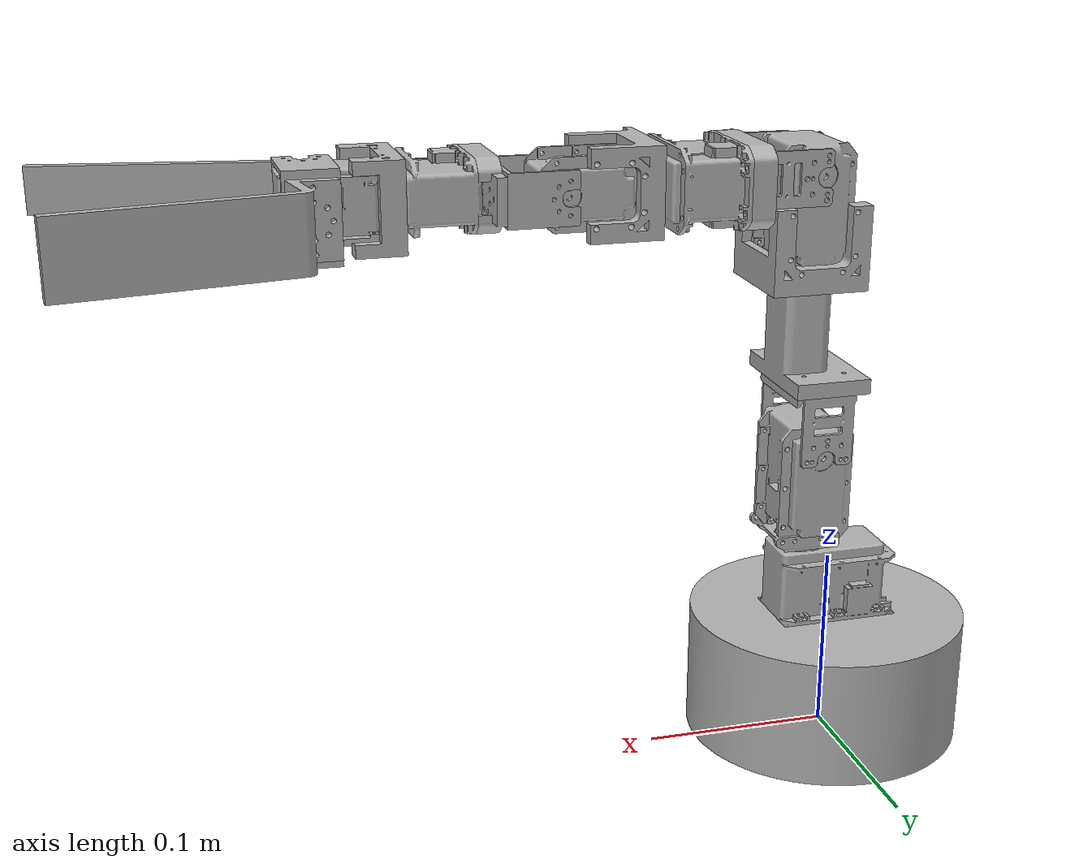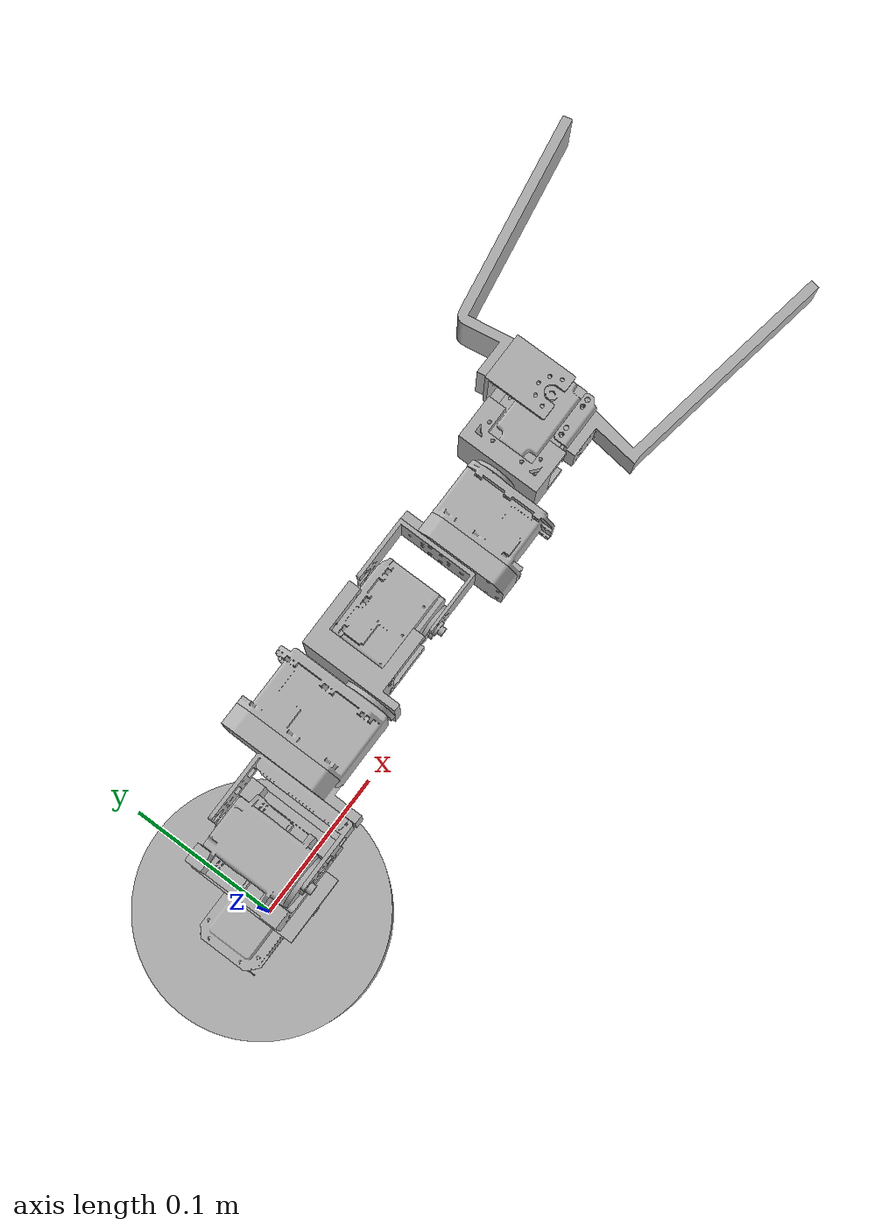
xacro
<?xml version="1.0" ?>
<robot name="robot_thesis" xmlns:xacro="http://www.ros.org/wiki/xacro">

<xacro:include filename="$(find robotarm1)/urdf/materials.xacro" />

<link name="world"/>

<link name="base_link">
  <inertial>
    <origin xyz="9.012318273457791e-17 1.3518477410186686e-16 0.03435590533223248" rpy="0 0 0"/>
    <mass value="1.2836622337920396"/>
    <inertia ixx="0.002344" iyy="0.00235" izz="0.003674" ixy="-0.0" iyz="-0.0" ixz="-0.0"/>
  </inertial>
  <visual>
    <origin xyz="0 0 0" rpy="0 0 0"/>
    <geometry>
      <mesh filename="file://$(find robotarm1)/meshes/base_link.stl" scale="0.001 0.001 0.001"/>
    </geometry>
    <material name="silver"/>
  </visual>
  <collision>
    <origin xyz="0 0 0" rpy="0 0 0"/>
    <geometry>
      <mesh filename="file://$(find robotarm1)/meshes/base_link.stl" scale="0.001 0.001 0.001"/>
    </geometry>
  </collision>
</link>

<link name="motor_1_1">
  <inertial>
    <origin xyz="3.628829346516639e-06 0.002321966228830483 0.01746041392822499" rpy="0 0 0"/>
    <mass value="0.6789927169229144"/>
    <inertia ixx="0.000325" iyy="0.000181" izz="0.000257" ixy="-0.0" iyz="-8e-06" ixz="0.0"/>
  </inertial>
  <visual>
    <origin xyz="-0.0 -0.0 -0.07" rpy="0 0 0"/>
    <geometry>
      <mesh filename="file://$(find robotarm1)/meshes/motor_1_1.stl" scale="0.001 0.001 0.001"/>
    </geometry>
    <material name="silver"/>
  </visual>
  <collision>
    <origin xyz="-0.0 -0.0 -0.07" rpy="0 0 0"/>
    <geometry>
      <mesh filename="file://$(find robotarm1)/meshes/motor_1_1.stl" scale="0.001 0.001 0.001"/>
    </geometry>
  </collision>
</link>

<link name="link_1_1">
  <inertial>
    <origin xyz="3.1164993036153376e-14 0.0011404315085001143 0.002602428747334906" rpy="0 0 0"/>
    <mass value="0.02126433295845854"/>
    <inertia ixx="2e-06" iyy="4e-06" izz="6e-06" ixy="0.0" iyz="-0.0" ixz="0.0"/>
  </inertial>
  <visual>
    <origin xyz="0.0 -0.01805 -0.113" rpy="0 0 0"/>
    <geometry>
      <mesh filename="file://$(find robotarm1)/meshes/link_1_1.stl" scale="0.001 0.001 0.001"/>
    </geometry>
    <material name="silver"/>
  </visual>
  <collision>
    <origin xyz="0.0 -0.01805 -0.113" rpy="0 0 0"/>
    <geometry>
      <mesh filename="file://$(find robotarm1)/meshes/link_1_1.stl" scale="0.001 0.001 0.001"/>
    </geometry>
  </collision>
</link>

<link name="motor_2_1">
  <inertial>
    <origin xyz="-0.016539586071775015 0.011003628829346513 0.03207196622883063" rpy="0 0 0"/>
    <mass value="0.6789927169229144"/>
    <inertia ixx="0.000257" iyy="0.000325" izz="0.000181" ixy="0.0" iyz="-0.0" ixz="-8e-06"/>
  </inertial>
  <visual>
    <origin xyz="-0.017 -0.00705 -0.1197" rpy="0 0 0"/>
    <geometry>
      <mesh filename="file://$(find robotarm1)/meshes/motor_2_1.stl" scale="0.001 0.001 0.001"/>
    </geometry>
    <material name="silver"/>
  </visual>
  <collision>
    <origin xyz="-0.017 -0.00705 -0.1197" rpy="0 0 0"/>
    <geometry>
      <mesh filename="file://$(find robotarm1)/meshes/motor_2_1.stl" scale="0.001 0.001 0.001"/>
    </geometry>
  </collision>
</link>

<link name="link_2_1">
  <inertial>
    <origin xyz="-0.02799999999998063 5.204170427930421e-17 0.026009952534790437" rpy="0 0 0"/>
    <mass value="0.05448373289857463"/>
    <inertia ixx="1.3e-05" iyy="3.3e-05" izz="3.1e-05" ixy="0.0" iyz="-0.0" ixz="-0.0"/>
  </inertial>
  <visual>
    <origin xyz="-0.0278 -0.01805 -0.1675" rpy="0 0 0"/>
    <geometry>
      <mesh filename="file://$(find robotarm1)/meshes/link_2_1.stl" scale="0.001 0.001 0.001"/>
    </geometry>
    <material name="silver"/>
  </visual>
  <collision>
    <origin xyz="-0.0278 -0.01805 -0.1675" rpy="0 0 0"/>
    <geometry>
      <mesh filename="file://$(find robotarm1)/meshes/link_2_1.stl" scale="0.001 0.001 0.001"/>
    </geometry>
  </collision>
</link>

<link name="link_3_1">
  <inertial>
    <origin xyz="-0.019002468210588833 -0.0061435339863676365 0.020025426911635363" rpy="0 0 0"/>
    <mass value="0.0552102238099497"/>
    <inertia ixx="2e-05" iyy="2.5e-05" izz="1.5e-05" ixy="-0.0" iyz="-3e-06" ixz="-0.0"/>
  </inertial>
  <visual>
    <origin xyz="-0.0188 -0.02905 -0.2035" rpy="0 0 0"/>
    <geometry>
      <mesh filename="file://$(find robotarm1)/meshes/link_3_1.stl" scale="0.001 0.001 0.001"/>
    </geometry>
    <material name="silver"/>
  </visual>
  <collision>
    <origin xyz="-0.0188 -0.02905 -0.2035" rpy="0 0 0"/>
    <geometry>
      <mesh filename="file://$(find robotarm1)/meshes/link_3_1.stl" scale="0.001 0.001 0.001"/>
    </geometry>
  </collision>
</link>

<link name="link_4_1">
  <inertial>
    <origin xyz="-0.012000000096857475 0.00800000007850148 0.012359580801715342" rpy="0 0 0"/>
    <mass value="0.04342078162492756"/>
    <inertia ixx="1.9e-05" iyy="2.1e-05" izz="2.8e-05" ixy="-0.0" iyz="-0.0" ixz="0.0"/>
  </inertial>
  <visual>
    <origin xyz="-0.0118 -0.01805 -0.2565" rpy="0 0 0"/>
    <geometry>
      <mesh filename="file://$(find robotarm1)/meshes/link_4_1.stl" scale="0.001 0.001 0.001"/>
    </geometry>
    <material name="silver"/>
  </visual>
  <collision>
    <origin xyz="-0.0118 -0.01805 -0.2565" rpy="0 0 0"/>
    <geometry>
      <mesh filename="file://$(find robotarm1)/meshes/link_4_1.stl" scale="0.001 0.001 0.001"/>
    </geometry>
  </collision>
</link>

<link name="motor_3_1">
  <inertial>
    <origin xyz="-0.016539586168632506 0.011003628829346671 0.03207196622883057" rpy="0 0 0"/>
    <mass value="0.6789927169229144"/>
    <inertia ixx="0.000257" iyy="0.000325" izz="0.000181" ixy="0.0" iyz="-0.0" ixz="-8e-06"/>
  </inertial>
  <visual>
    <origin xyz="-0.01755 -0.01505 -0.2673" rpy="0 0 0"/>
    <geometry>
      <mesh filename="file://$(find robotarm1)/meshes/motor_3_1.stl" scale="0.001 0.001 0.001"/>
    </geometry>
    <material name="silver"/>
  </visual>
  <collision>
    <origin xyz="-0.01755 -0.01505 -0.2673" rpy="0 0 0"/>
    <geometry>
      <mesh filename="file://$(find robotarm1)/meshes/motor_3_1.stl" scale="0.001 0.001 0.001"/>
    </geometry>
  </collision>
</link>

<link name="link_5_1">
  <inertial>
    <origin xyz="-0.028000000096838153 0.026009952534790434 5.551115123125783e-17" rpy="0 0 0"/>
    <mass value="0.05448373289857463"/>
    <inertia ixx="1.3e-05" iyy="3.1e-05" izz="3.3e-05" ixy="-0.0" iyz="0.0" ixz="-0.0"/>
  </inertial>
  <visual>
    <origin xyz="-0.02835 -0.02605 -0.3151" rpy="0 0 0"/>
    <geometry>
      <mesh filename="file://$(find robotarm1)/meshes/link_5_1.stl" scale="0.001 0.001 0.001"/>
    </geometry>
    <material name="silver"/>
  </visual>
  <collision>
    <origin xyz="-0.02835 -0.02605 -0.3151" rpy="0 0 0"/>
    <geometry>
      <mesh filename="file://$(find robotarm1)/meshes/link_5_1.stl" scale="0.001 0.001 0.001"/>
    </geometry>
  </collision>
</link>

<link name="link_6_1">
  <inertial>
    <origin xyz="-0.03447684065920148 0.0039239587378546645 0.011000000000006283" rpy="0 0 0"/>
    <mass value="0.01953980766714853"/>
    <inertia ixx="3e-06" iyy="1.2e-05" izz="9e-06" ixy="0.0" iyz="-0.0" ixz="0.0"/>
  </inertial>
  <visual>
    <origin xyz="-0.01935 -0.06205 -0.3041" rpy="0 0 0"/>
    <geometry>
      <mesh filename="file://$(find robotarm1)/meshes/link_6_1.stl" scale="0.001 0.001 0.001"/>
    </geometry>
    <material name="silver"/>
  </visual>
  <collision>
    <origin xyz="-0.01935 -0.06205 -0.3041" rpy="0 0 0"/>
    <geometry>
      <mesh filename="file://$(find robotarm1)/meshes/link_6_1.stl" scale="0.001 0.001 0.001"/>
    </geometry>
  </collision>
</link>

<link name="motor_4_1">
  <inertial>
    <origin xyz="-0.019203439180806456 0.01745225090137792 -0.017299999874397287" rpy="0 0 0"/>
    <mass value="0.5683577063335443"/>
    <inertia ixx="0.000133" iyy="0.000195" izz="0.000234" ixy="-7e-06" iyz="0.0" ixz="0.0"/>
  </inertial>
  <visual>
    <origin xyz="-0.002397 -0.07405 -0.3324" rpy="0 0 0"/>
    <geometry>
      <mesh filename="file://$(find robotarm1)/meshes/motor_4_1.stl" scale="0.001 0.001 0.001"/>
    </geometry>
    <material name="silver"/>
  </visual>
  <collision>
    <origin xyz="-0.002397 -0.07405 -0.3324" rpy="0 0 0"/>
    <geometry>
      <mesh filename="file://$(find robotarm1)/meshes/motor_4_1.stl" scale="0.001 0.001 0.001"/>
    </geometry>
  </collision>
</link>

<link name="link_7_1">
  <inertial>
    <origin xyz="-0.016239690829836572 0.009685252923107526 -4.662215058459651e-12" rpy="0 0 0"/>
    <mass value="0.022873425755281396"/>
    <inertia ixx="8e-06" iyy="1.2e-05" izz="9e-06" ixy="0.0" iyz="0.0" ixz="-0.0"/>
  </inertial>
  <visual>
    <origin xyz="0.001603 -0.11455 -0.3151" rpy="0 0 0"/>
    <geometry>
      <mesh filename="file://$(find robotarm1)/meshes/link_7_1.stl" scale="0.001 0.001 0.001"/>
    </geometry>
    <material name="silver"/>
  </visual>
  <collision>
    <origin xyz="0.001603 -0.11455 -0.3151" rpy="0 0 0"/>
    <geometry>
      <mesh filename="file://$(find robotarm1)/meshes/link_7_1.stl" scale="0.001 0.001 0.001"/>
    </geometry>
  </collision>
</link>

<link name="motor_5_1">
  <inertial>
    <origin xyz="-0.0149695844038971 0.024666145926974747 0.00847782678991027" rpy="0 0 0"/>
    <mass value="0.349956896326235"/>
    <inertia ixx="8.3e-05" iyy="6.3e-05" izz="0.000101" ixy="-2e-06" iyz="-0.0" ixz="0.0"/>
  </inertial>
  <visual>
    <origin xyz="0.004103 -0.124747 -0.3066" rpy="0 0 0"/>
    <geometry>
      <mesh filename="file://$(find robotarm1)/meshes/motor_5_1.stl" scale="0.001 0.001 0.001"/>
    </geometry>
    <material name="silver"/>
  </visual>
  <collision>
    <origin xyz="0.004103 -0.124747 -0.3066" rpy="0 0 0"/>
    <geometry>
      <mesh filename="file://$(find robotarm1)/meshes/motor_5_1.stl" scale="0.001 0.001 0.001"/>
    </geometry>
  </collision>
</link>

<link name="link_8_1">
  <inertial>
    <origin xyz="-0.022291223647001427 0.020427337902704512 -7.858419470707645e-11" rpy="0 0 0"/>
    <mass value="0.005409120330097442"/>
    <inertia ixx="1e-06" iyy="2e-06" izz="2e-06" ixy="-0.0" iyz="0.0" ixz="-0.0"/>
  </inertial>
  <visual>
    <origin xyz="-0.001397 -0.160547 -0.3151" rpy="0 0 0"/>
    <geometry>
      <mesh filename="file://$(find robotarm1)/meshes/link_8_1.stl" scale="0.001 0.001 0.001"/>
    </geometry>
    <material name="silver"/>
  </visual>
  <collision>
    <origin xyz="-0.001397 -0.160547 -0.3151" rpy="0 0 0"/>
    <geometry>
      <mesh filename="file://$(find robotarm1)/meshes/link_8_1.stl" scale="0.001 0.001 0.001"/>
    </geometry>
  </collision>
</link>

<link name="link_9_1">
  <inertial>
    <origin xyz="0.027206227196355553 0.004151390075283284 1.9578749732573897e-10" rpy="0 0 0"/>
    <mass value="0.014111619441575405"/>
    <inertia ixx="2e-06" iyy="6e-06" izz="4e-06" ixy="-0.0" iyz="0.0" ixz="0.0"/>
  </inertial>
  <visual>
    <origin xyz="0.034603 -0.190547 -0.3151" rpy="0 0 0"/>
    <geometry>
      <mesh filename="file://$(find robotarm1)/meshes/link_9_1.stl" scale="0.001 0.001 0.001"/>
    </geometry>
    <material name="silver"/>
  </visual>
  <collision>
    <origin xyz="0.034603 -0.190547 -0.3151" rpy="0 0 0"/>
    <geometry>
      <mesh filename="file://$(find robotarm1)/meshes/link_9_1.stl" scale="0.001 0.001 0.001"/>
    </geometry>
  </collision>
</link>

<link name="motor_6_1">
  <inertial>
    <origin xyz="-0.001365838845101974 0.015030646170742373 0.014977826983625209" rpy="0 0 0"/>
    <mass value="0.349956896326235"/>
    <inertia ixx="6.3e-05" iyy="8.3e-05" izz="0.000101" ixy="2e-06" iyz="0.0" ixz="0.0"/>
  </inertial>
  <visual>
    <origin xyz="0.007103 -0.201847 -0.3001" rpy="0 0 0"/>
    <geometry>
      <mesh filename="file://$(find robotarm1)/meshes/motor_6_1.stl" scale="0.001 0.001 0.001"/>
    </geometry>
    <material name="silver"/>
  </visual>
  <collision>
    <origin xyz="0.007103 -0.201847 -0.3001" rpy="0 0 0"/>
    <geometry>
      <mesh filename="file://$(find robotarm1)/meshes/motor_6_1.stl" scale="0.001 0.001 0.001"/>
    </geometry>
  </collision>
</link>

<link name="link_10_1">
  <inertial>
    <origin xyz="1.8887543342269164e-05 0.00711531920362013 1.9383578075959917e-10" rpy="0 0 0"/>
    <mass value="0.01651736796671192"/>
    <inertia ixx="5e-06" iyy="8e-06" izz="5e-06" ixy="-0.0" iyz="0.0" ixz="0.0"/>
  </inertial>
  <visual>
    <origin xyz="0.019603 -0.237347 -0.3151" rpy="0 0 0"/>
    <geometry>
      <mesh filename="file://$(find robotarm1)/meshes/link_10_1.stl" scale="0.001 0.001 0.001"/>
    </geometry>
    <material name="silver"/>
  </visual>
  <collision>
    <origin xyz="0.019603 -0.237347 -0.3151" rpy="0 0 0"/>
    <geometry>
      <mesh filename="file://$(find robotarm1)/meshes/link_10_1.stl" scale="0.001 0.001 0.001"/>
    </geometry>
  </collision>
</link>

<link name="gripper_1_1">
  <inertial>
    <origin xyz="-0.008522135038545852 0.024665414839305455 0.014969622933301951" rpy="0 0 0"/>
    <mass value="0.349956896326235"/>
    <inertia ixx="0.000101" iyy="6.3e-05" izz="8.3e-05" ixy="-0.0" iyz="2e-06" ixz="-0.0"/>
  </inertial>
  <visual>
    <origin xyz="0.011103 -0.245045 -0.2995" rpy="0 0 0"/>
    <geometry>
      <mesh filename="file://$(find robotarm1)/meshes/gripper_1_1.stl" scale="0.001 0.001 0.001"/>
    </geometry>
    <material name="silver"/>
  </visual>
  <collision>
    <origin xyz="0.011103 -0.245045 -0.2995" rpy="0 0 0"/>
    <geometry>
      <mesh filename="file://$(find robotarm1)/meshes/gripper_1_1.stl" scale="0.001 0.001 0.001"/>
    </geometry>
  </collision>
</link>

<link name="link_11_1">
  <inertial>
    <origin xyz="-0.019844408919164055 -4.622682293620173e-07 0.019999999107625288" rpy="0 0 0"/>
    <mass value="0.005783955125023724"/>
    <inertia ixx="2e-06" iyy="2e-06" izz="1e-06" ixy="-0.0" iyz="0.0" ixz="0.0"/>
  </inertial>
  <visual>
    <origin xyz="0.019603 -0.280845 -0.294" rpy="0 0 0"/>
    <geometry>
      <mesh filename="file://$(find robotarm1)/meshes/link_11_1.stl" scale="0.001 0.001 0.001"/>
    </geometry>
    <material name="silver"/>
  </visual>
  <collision>
    <origin xyz="0.019603 -0.280845 -0.294" rpy="0 0 0"/>
    <geometry>
      <mesh filename="file://$(find robotarm1)/meshes/link_11_1.stl" scale="0.001 0.001 0.001"/>
    </geometry>
  </collision>
</link>

<link name="link_12_1">
  <inertial>
    <origin xyz="0.003785531379673724 0.008966871691439837 0.015000000193810592" rpy="0 0 0"/>
    <mass value="0.011446844551351427"/>
    <inertia ixx="2e-06" iyy="2e-06" izz="1e-06" ixy="0.0" iyz="0.0" ixz="0.0"/>
  </inertial>
  <visual>
    <origin xyz="0.004603 -0.268345 -0.2995" rpy="0 0 0"/>
    <geometry>
      <mesh filename="file://$(find robotarm1)/meshes/link_12_1.stl" scale="0.001 0.001 0.001"/>
    </geometry>
    <material name="silver"/>
  </visual>
  <collision>
    <origin xyz="0.004603 -0.268345 -0.2995" rpy="0 0 0"/>
    <geometry>
      <mesh filename="file://$(find robotarm1)/meshes/link_12_1.stl" scale="0.001 0.001 0.001"/>
    </geometry>
  </collision>
</link>

<link name="finger_1_1">
  <inertial>
    <origin xyz="0.02969875161765512 0.04833113338431311 1.9382928595490512e-10" rpy="0 0 0"/>
    <mass value="0.02058349518896819"/>
    <inertia ixx="3.5e-05" iyy="5e-06" izz="3.8e-05" ixy="-1e-05" iyz="-0.0" ixz="-0.0"/>
  </inertial>
  <visual>
    <origin xyz="-0.001397 -0.276845 -0.3145" rpy="0 0 0"/>
    <geometry>
      <mesh filename="file://$(find robotarm1)/meshes/finger_1_1.stl" scale="0.001 0.001 0.001"/>
    </geometry>
    <material name="silver"/>
  </visual>
  <collision>
    <origin xyz="-0.001397 -0.276845 -0.3145" rpy="0 0 0"/>
    <geometry>
      <mesh filename="file://$(find robotarm1)/meshes/finger_1_1.stl" scale="0.001 0.001 0.001"/>
    </geometry>
  </collision>
</link>

<link name="finger_2_1">
  <inertial>
    <origin xyz="-0.02880783417449618 0.04420295431414445 2.9918123534145025e-11" rpy="0 0 0"/>
    <mass value="0.0296291055226969"/>
    <inertia ixx="4.5e-05" iyy="9e-06" izz="4.7e-05" ixy="1.3e-05" iyz="0.0" ixz="-0.0"/>
  </inertial>
  <visual>
    <origin xyz="0.049603 -0.280845 -0.314" rpy="0 0 0"/>
    <geometry>
      <mesh filename="file://$(find robotarm1)/meshes/finger_2_1.stl" scale="0.001 0.001 0.001"/>
    </geometry>
    <material name="silver"/>
  </visual>
  <collision>
    <origin xyz="0.049603 -0.280845 -0.314" rpy="0 0 0"/>
    <geometry>
      <mesh filename="file://$(find robotarm1)/meshes/finger_2_1.stl" scale="0.001 0.001 0.001"/>
    </geometry>
  </collision>
</link>

<link name="ft_frame"/>
<link name="tool0"/>

<joint name="world_to_base" type="fixed">
  <parent link="world"/>
  <child link="base_link"/>
  <!-- Optionally set the origin for placement -->
  <origin xyz="0 0 0" rpy="0 0 -1.57"/>
  <axis xyz="0 0 1"/>
</joint>

<joint name="Rigid 1" type="fixed">
  <origin xyz="0.0 0.0 0.07" rpy="0 0 0"/>
  <parent link="base_link"/>
  <child link="motor_1_1"/>
</joint>

<joint name="Revolute_2" type="revolute">
  <origin xyz="-0.0 0.01805 0.043" rpy="0 0 0"/>
  <parent link="motor_1_1"/>
  <child link="link_1_1"/>
  <axis xyz="0.0 0.0 1.0"/>
  <limit upper="3.14159265359" lower="-3.14159265359" effort="100" velocity="100"/>
</joint>

<joint name="Rigid 3" type="fixed">
  <origin xyz="0.017 -0.011 0.0067" rpy="0 0 0"/>
  <parent link="link_1_1"/>
  <child link="motor_2_1"/>
</joint>

<joint name="Revolute_4" type="revolute">
  <origin xyz="0.0108 0.011 0.0478" rpy="0 0 0"/>
  <parent link="motor_2_1"/>
  <child link="link_2_1"/>
  <axis xyz="1.0 -0.0 0.0"/>
  <limit upper="3.14159265359" lower="-3.14159265359" effort="100" velocity="100"/>
</joint>

<joint name="Rigid 5" type="fixed">
  <origin xyz="-0.009 0.011 0.036" rpy="0 0 0"/>
  <parent link="link_2_1"/>
  <child link="link_3_1"/>
</joint>

<joint name="Rigid 6" type="fixed">
  <origin xyz="-0.007 -0.011 0.053" rpy="0 0 0"/>
  <parent link="link_3_1"/>
  <child link="link_4_1"/>
</joint>

<joint name="Rigid 7" type="fixed">
  <origin xyz="0.00575 -0.003 0.0108" rpy="0 0 0"/>
  <parent link="link_4_1"/>
  <child link="motor_3_1"/>
</joint>

<joint name="Revolute_8" type="revolute">
  <origin xyz="0.0108 0.011 0.0478" rpy="0 0 0"/>
  <parent link="motor_3_1"/>
  <child link="link_5_1"/>
  <axis xyz="1.0 -0.0 0.0"/>
  <limit upper="3.14159265359" lower="0.0" effort="100" velocity="100"/>
</joint>

<joint name="Rigid 9" type="fixed">
  <origin xyz="-0.009 0.036 -0.011" rpy="0 0 0"/>
  <parent link="link_5_1"/>
  <child link="link_6_1"/>
</joint>

<joint name="Rigid 10" type="fixed">
  <origin xyz="-0.016953 0.012 0.0283" rpy="0 0 0"/>
  <parent link="link_6_1"/>
  <child link="motor_4_1"/>
</joint>

<joint name="Revolute_11" type="revolute">
  <origin xyz="-0.004 0.0405 -0.0173" rpy="0 0 0"/>
  <parent link="motor_4_1"/>
  <child link="link_7_1"/>
  <axis xyz="0.0 1.0 0.0"/>
  <limit upper="3.14159265359" lower="-3.14159265359" effort="100" velocity="100"/>
</joint>

<joint name="Rigid 12" type="fixed">
  <origin xyz="-0.0025 0.010197 -0.0085" rpy="0 0 0"/>
  <parent link="link_7_1"/>
  <child link="motor_5_1"/>
</joint>

<joint name="Revolute_13" type="revolute">
  <origin xyz="0.0055 0.0358 0.0085" rpy="0 0 0"/>
  <parent link="motor_5_1"/>
  <child link="link_8_1"/>
  <axis xyz="1.0 -0.0 0.0"/>
  <limit upper="3.14159265359" lower="-3.14159265359" effort="100" velocity="100"/>
</joint>

<joint name="Rigid 14" type="fixed">
  <origin xyz="-0.036 0.03 0.0" rpy="0 0 0"/>
  <parent link="link_8_1"/>
  <child link="link_9_1"/>
</joint>

<joint name="Rigid 15" type="fixed">
  <origin xyz="0.0275 0.0113 -0.015" rpy="0 0 0"/>
  <parent link="link_9_1"/>
  <child link="motor_6_1"/>
</joint>

<joint name="Revolute_16" type="revolute">
  <origin xyz="-0.0125 0.0355 0.015" rpy="0 0 0"/>
  <parent link="motor_6_1"/>
  <child link="link_10_1"/>
  <axis xyz="0.0 1.0 0.0"/>
  <limit upper="3.14159265359" lower="-3.14159265359" effort="100" velocity="100"/>
</joint>

<joint name="Rigid 17" type="fixed">
  <origin xyz="0.0085 0.007698 -0.0156" rpy="0 0 0"/>
  <parent link="link_10_1"/>
  <child link="gripper_1_1"/>
</joint>

<joint name="Revolute_18" type="revolute">
  <origin xyz="-0.0085 0.0358 -0.0055" rpy="0 0 0"/>
  <parent link="gripper_1_1"/>
  <child link="link_11_1"/>
  <axis xyz="-0.0 0.0 1.0"/>
  <limit upper="0.0" lower="-0.872665" effort="100" velocity="100"/>
</joint>

<joint name="Rigid 19" type="fixed">
  <origin xyz="0.0065 0.0233 0.0" rpy="0 0 0"/>
  <parent link="gripper_1_1"/>
  <child link="link_12_1"/>
</joint>

<joint name="Rigid 20" type="fixed">
  <origin xyz="0.006 0.0085 0.015" rpy="0 0 0"/>
  <parent link="link_12_1"/>
  <child link="finger_1_1"/>
</joint>

<joint name="Rigid 21" type="fixed">
  <origin xyz="-0.03 0.0 0.02" rpy="0 0 0"/>
  <parent link="link_11_1"/>
  <child link="finger_2_1"/>
</joint>

<joint name="joint-ft_frame" type="fixed">
    <parent link="gripper_1_1"/>
    <child link="ft_frame"/>
    <origin xyz="0 0 0" rpy="0 0 0"/>
  </joint>

<joint name="joint-tool" type="fixed">
    <parent link="ft_frame"/>
    <child link="tool0"/>
    <origin xyz="-0.0085 0.0358 -0.0055" rpy="0 0 0"/>
</joint>

<ros2_control name="GazeboSystem" type="system">
  <hardware>
    <plugin>gazebo_ros2_control/GazeboSystem</plugin>
  </hardware>
  <joint name="Revolute_2">
    <command_interface name="position">
        <param name="min">-3.14159265359</param>
        <param name="max"> 3.14159265359</param>
    </command_interface>
    <state_interface name="position">
        <param name="initial_value">0.0</param>
    </state_interface>
    <state_interface name="velocity"/>
    <state_interface name="effort"/>
  </joint>

  <joint name="Revolute_4">
    <command_interface name="position">
        <param name="min">-3.14159265359</param>
        <param name="max"> 3.14159265359</param>
    </command_interface>
    <state_interface name="position">
        <param name="initial_value">0.0</param>
    </state_interface>
    <state_interface name="velocity"/>
    <state_interface name="effort"/>
  </joint>

  <joint name="Revolute_8">
    <command_interface name="position">
        <param name="min">0.0</param>
        <param name="max"> 3.14159265359</param>
    </command_interface>
    <state_interface name="position">
        <param name="initial_value">0.0</param>
    </state_interface>
    <state_interface name="velocity"/>
    <state_interface name="effort"/>
  </joint>

  <joint name="Revolute_11">
    <command_interface name="position">
        <param name="min">-3.14159265359</param>
        <param name="max"> 3.14159265359</param>
    </command_interface>
    <state_interface name="position">
        <param name="initial_value">0.0</param>
    </state_interface>
    <state_interface name="velocity"/>
    <state_interface name="effort"/>
  </joint>

  <joint name="Revolute_13">
    <command_interface name="position">
        <param name="min">-3.14159265359</param>
        <param name="max"> 3.14159265359</param>
    </command_interface>
    <state_interface name="position">
        <param name="initial_value">0.0</param>
    </state_interface>
    <state_interface name="velocity"/>
    <state_interface name="effort"/>
  </joint>

  <joint name="Revolute_16">
    <command_interface name="position">
        <param name="min">-3.14159265359</param>
        <param name="max"> 3.14159265359</param>
    </command_interface>
    <state_interface name="position">
        <param name="initial_value">0.0</param>
    </state_interface>
    <state_interface name="velocity"/>
    <state_interface name="effort"/>
  </joint>

  <joint name="Revolute_18">
    <command_interface name="position">
        <param name="min">-0.872665</param>
        <param name="max"> 0</param>
    </command_interface>
    <state_interface name="position">
        <param name="initial_value">0.0</param>
    </state_interface>
    <state_interface name="velocity"/>
    <state_interface name="effort"/>
  </joint>

</ros2_control>

<gazebo>
  <plugin filename="libgazebo_ros2_control.so" name="gazebo_ros2_control">
    <parameters>$(find robotarm1)/config/ros2_controllers.yaml</parameters>
  </plugin>
</gazebo>

</robot>

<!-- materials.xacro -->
<robot name="success" xmlns:xacro="http://www.ros.org/wiki/xacro" >

<material name="silver">
  <color rgba="0.700 0.700 0.700 1.000"/>
</material>

<material name="red">
  <color rgba="1.000 0.000 0.000 1.000"/>
</material>

</robot>
